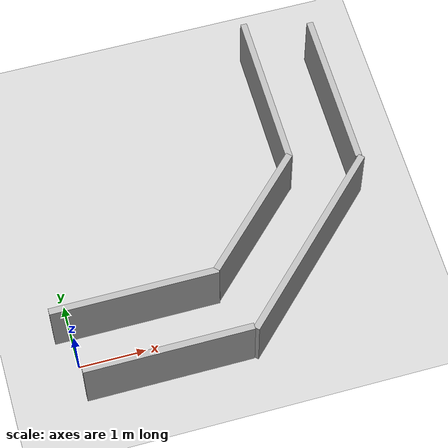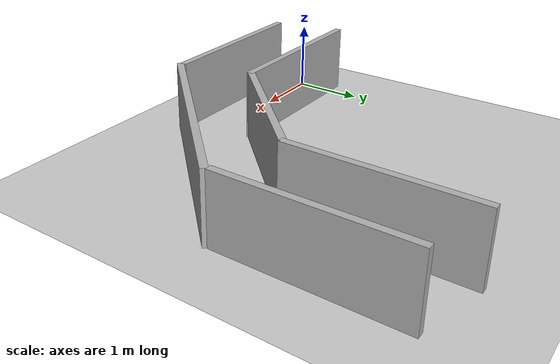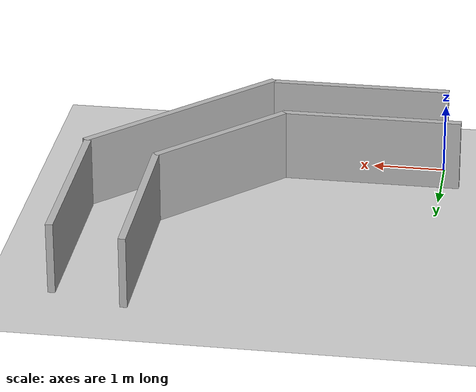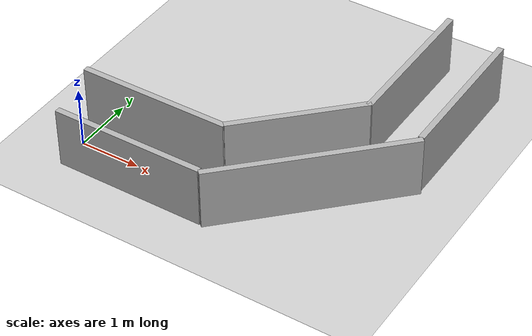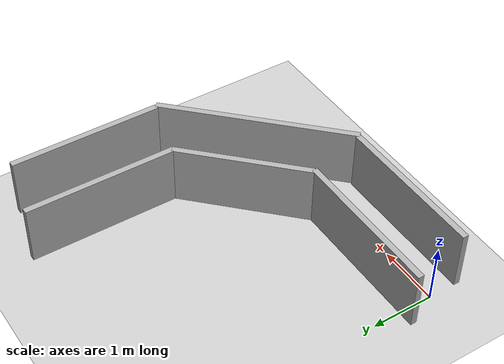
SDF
<?xml version="1.0" ?>
<sdf version="1.6">
  <world name="track_world">
    <!-- Basic physics settings -->
    <physics name="default_physics" type="ode">
      <max_step_size>0.001</max_step_size>
      <real_time_factor>1</real_time_factor>
      <real_time_update_rate>1000</real_time_update_rate>
    </physics>

    <!-- Include a ground plane (optional, you may already have one) -->
   <gravity>0 0 -9.8</gravity>
    <magnetic_field>6e-06 2.3e-05 -4.2e-05</magnetic_field>
    <atmosphere type='adiabatic'/>
    <scene>
      <ambient>0.4 0.4 0.4 1</ambient>
      <background>0.7 0.7 0.7 1</background>
      <shadows>true</shadows>
    </scene>
    <model name='ground_plane'>
      <static>true</static>
      <link name='link'>
        <collision name='collision'>
          <geometry>
            <plane>
              <normal>0 0 1</normal>
              <size>100 100</size>
            </plane>
          </geometry>
          <surface>
            <friction>
              <ode/>
            </friction>
            <bounce/>
            <contact/>
          </surface>
        </collision>
        <visual name='visual'>
          <geometry>
            <plane>
              <normal>0 0 1</normal>
              <size>100 100</size>
            </plane>
          </geometry>
          <material>
            <ambient>0.8 0.8 0.8 1</ambient>
            <diffuse>0.8 0.8 0.8 1</diffuse>
            <specular>0.8 0.8 0.8 1</specular>
          </material>
        </visual>
        <pose>0 0 0 0 -0 0</pose>
        <inertial>
          <pose>0 0 0 0 -0 0</pose>
          <mass>1</mass>
          <inertia>
            <ixx>1</ixx>
            <ixy>0</ixy>
            <ixz>0</ixz>
            <iyy>1</iyy>
            <iyz>0</iyz>
            <izz>1</izz>
          </inertia>
        </inertial>
        <enable_wind>false</enable_wind>
      </link>
      <pose>0 0 0 0 -0 0</pose>
      <self_collide>false</self_collide>
    </model>
    <light name='sun' type='directional'>
      <pose>0 0 10 0 -0 0</pose>
      <cast_shadows>true</cast_shadows>
      <intensity>1</intensity>
      <direction>-0.5 0.1 -0.9</direction>
      <diffuse>0.8 0.8 0.8 1</diffuse>
      <specular>0.2 0.2 0.2 1</specular>
      <attenuation>
        <range>1000</range>
        <linear>0.01</linear>
        <constant>0.90000000000000002</constant>
        <quadratic>0.001</quadratic>
      </attenuation>
      <spot>
        <inner_angle>0</inner_angle>
        <outer_angle>0</outer_angle>
        <falloff>0</falloff>
      </spot>
    </light>

    <!-- TRACK MODEL: A static model containing walls forming the track -->
        <model name="zigzag_track">
      <!-- Make the track static so it doesn't fall or move -->
      <static>true</static>

      <!-- Left Wall, Segment 1 -->
      <!-- Center of segment at x=1.25, offset +0.5 in y -->
      <link name="left_wall_seg1">
        <pose>1.0 0.5 0.5 0 0 0</pose>
        <!-- Visual only, no collision -->
        <visual name="visual">
          <geometry>
            <!-- 2.5 m long, 0.1 m thick, 1 m high -->
            <box><size>2.5 0.1 1</size></box>
          </geometry>
          <material>
            <ambient>0.7 0.7 0.7 1</ambient>
            <diffuse>0.7 0.7 0.7 1</diffuse>
          </material>
        </visual>
      </link>

      <!-- Right Wall, Segment 1 -->
      <!-- Center of segment at x=1.25, offset -0.5 in y -->
      <link name="right_wall_seg1">
        <pose>1.25 -0.5 0.5 0 0 0</pose>
        <visual name="visual">
          <geometry>
            <box><size>2.5 0.1 1</size></box>
          </geometry>
          <material>
            <ambient>0.7 0.7 0.7 1</ambient>
            <diffuse>0.7 0.7 0.7 1</diffuse>
          </material>
        </visual>
      </link>

      <!-- ================================
           Segment 2: 2.5 m straight
           Orientation: 45°
           Start pivot at (2.5, 0)
         ================================ -->

      <!-- Left Wall, Segment 2 -->
      <link name="left_wall_seg2">
        <!-- final = (3.3839, 0.8839) + (-0.3536, +0.3536) = (3.0303, 1.2375) -->
        <pose>3.0003 1.2875 0.5 0 0 0.7854</pose>
        <visual name="visual">
          <geometry>
            <box><size>2.2 0.1 1</size></box>
          </geometry>
          <material>
            <ambient>0.7 0.7 0.7 1</ambient>
            <diffuse>0.7 0.7 0.7 1</diffuse>
          </material>
        </visual>
      </link>

      <!-- Right Wall, Segment 2 -->
      <link name="right_wall_seg2">
        <!-- final = (3.3839, 0.8839) + (0.3536, -0.3536) = (3.7375, 0.5303) -->
        <pose>3.6625 0.6053 0.5 0 0 0.7854</pose>
        <visual name="visual">
          <geometry>
            <box><size>3.25 0.1 1</size></box>
          </geometry>
          <material>
            <ambient>0.7 0.7 0.7 1</ambient>
            <diffuse>0.7 0.7 0.7 1</diffuse>
          </material>
        </visual>
      </link>

      <!-- ================================
           Segment 3: 2.5 m straight
           Orientation: 90° (45° more)
           Start pivot at end of Segment 2
         ================================ -->

      <!-- Left Wall, Segment 3 -->
      <link name="left_wall_seg3">
        <!-- final = (4.2678, 3.0178) + (-0.5, 0) = (3.7678, 3.0178) -->
        <pose>3.7678 3.2678 0.5 0 0 1.5708</pose>
        <visual name="visual">
          <geometry>
            <box><size>2.5 0.1 1</size></box>
          </geometry>
          <material>
            <ambient>0.7 0.7 0.7 1</ambient>
            <diffuse>0.7 0.7 0.7 1</diffuse>
          </material>
        </visual>
      </link>

      <!-- Right Wall, Segment 3 -->
      <link name="right_wall_seg3">
        <!-- final = (4.2678, 3.0178) + (0.5, 0) = (4.7678, 3.0178) -->
        <pose>4.7678 3.0178 0.5 0 0 1.5708</pose>
        <visual name="visual">
          <geometry>
            <box><size>2.5 0.1 1</size></box>
          </geometry>
          <material>
            <ambient>0.7 0.7 0.7 1</ambient>
            <diffuse>0.7 0.7 0.7 1</diffuse>
          </material>
        </visual>
      </link>
    </model>

  </world>
</sdf>
